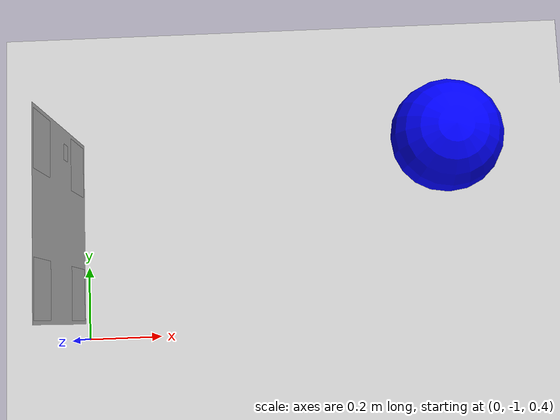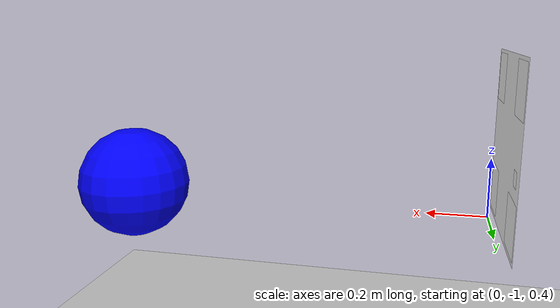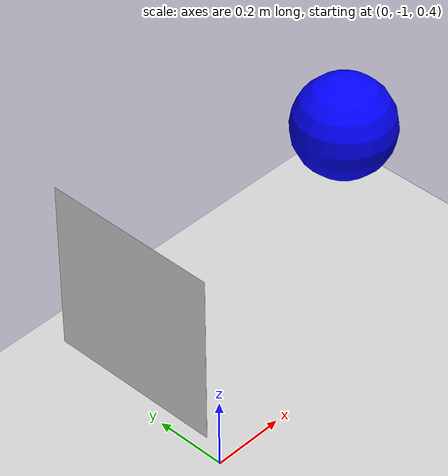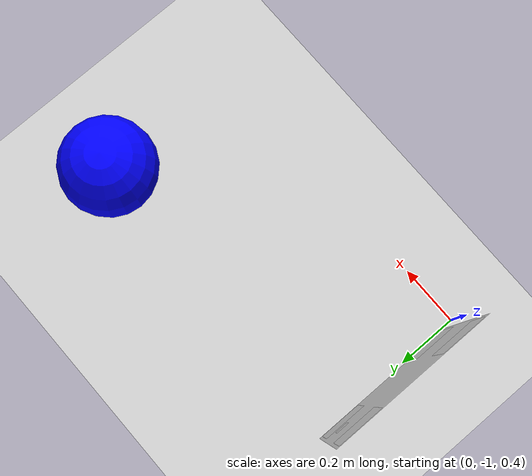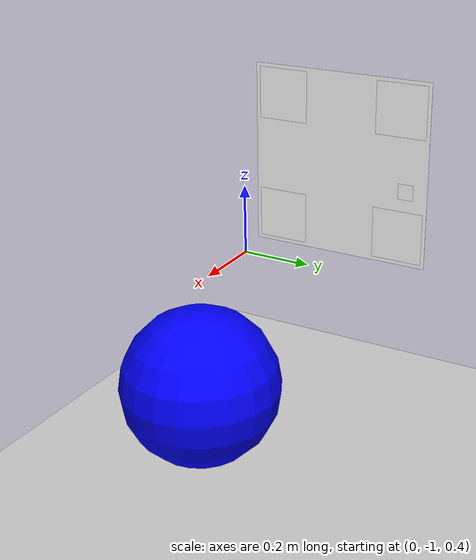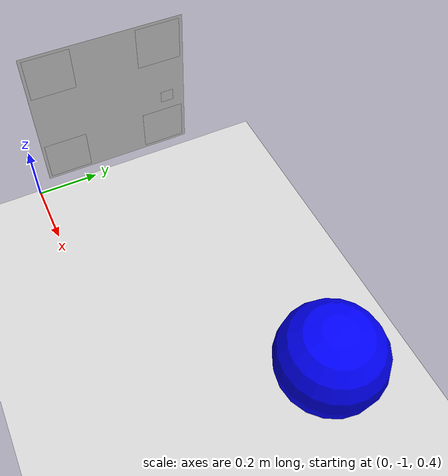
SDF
<?xml version="1.0" ?>
<sdf version="1.4">
  <!-- We use a custom world for the rrbot so that the camera angle is launched correctly -->

  <world name="default">
    <!-- Included light -->
    <include>
      <uri>https://fuel.gazebosim.org/1.0/OpenRobotics/models/Sun</uri>
    </include>

    <!-- Included model -->
    <include>
      <uri>https://fuel.gazebosim.org/1.0/OpenRobotics/models/Ground Plane</uri>
    </include>

    <include>
      <uri>
        model://arucotag
      </uri>
      <name>arucotag</name>
      <pose>0 -0.707 0.707 0 1.57 0</pose>
    </include>

    <include>
      <uri>
        model://spherical_object
      </uri>
      <name>spherical_object</name>
      <pose>1 -0.5 0.6 0 0 0</pose>
    </include>

    <gravity>0 0 0</gravity>

    <!-- Focus camera on tall pendulum -->
    <gui fullscreen='0'>
      <camera name='user_camera'>
        <pose>4.927360 -4.376610 3.740080 0.000000 0.275643 2.356190</pose>
        <view_controller>orbit</view_controller>
      </camera>
    </gui>

    <!-- World control -->

  </world>
</sdf>

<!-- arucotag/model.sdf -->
<sdf version='1.9'>
  <model name='arucotag'>
    <static>true</static>
    <pose>0 0 0.001 0 0 0</pose>
    <link name='base'>
      <visual name='background_visual'>
        <geometry>
          <plane>
            <normal>0 0 1</normal>
            <size>0.5 0.5</size>
          </plane>
        </geometry>
        <material>
          <diffuse>1 1 1 1</diffuse>
          <specular>0.2 0.2 0.2 1</specular>
        </material>
      </visual>
      <visual name='tag_0_visual'>
        <pose>0.17 0.17 0.0002 0 0 0</pose>
        <geometry>
          <plane>
            <normal>0 0 1</normal>
            <size>0.14 0.14</size>
          </plane>
        </geometry>
        <material>
          <diffuse>1 1 1 1</diffuse>
          <specular>0.4 0.4 0.4 1</specular>
          <pbr>
            <metal>
              <albedo_map>model://arucotag/aruco_0.png</albedo_map>
            </metal>
          </pbr>
        </material>
      </visual>
      <visual name='tag_1_visual'>
        <pose>-0.17 0.17 0.0002 0 0 0</pose>
        <geometry>
          <plane>
            <normal>0 0 1</normal>
            <size>0.14 0.14</size>
          </plane>
        </geometry>
        <material>
          <diffuse>1 1 1 1</diffuse>
          <specular>0.4 0.4 0.4 1</specular>
          <pbr>
            <metal>
              <albedo_map>model://arucotag/aruco_1.png</albedo_map>
            </metal>
          </pbr>
        </material>
      </visual>
      <visual name='tag_2_visual'>
        <pose>-0.17 -0.17 0.0002 0 0 0</pose>
        <geometry>
          <plane>
            <normal>0 0 1</normal>
            <size>0.14 0.14</size>
          </plane>
        </geometry>
        <material>
          <diffuse>1 1 1 1</diffuse>
          <specular>0.4 0.4 0.4 1</specular>
          <pbr>
            <metal>
              <albedo_map>model://arucotag/aruco_2.png</albedo_map>
            </metal>
          </pbr>
        </material>
      </visual>
      <visual name='tag_3_visual'>
        <pose>0.17 -0.17 0.0002 0 0 0</pose>
        <geometry>
          <plane>
            <normal>0 0 1</normal>
            <size>0.14 0.14</size>
          </plane>
        </geometry>
        <material>
          <diffuse>1 1 1 1</diffuse>
          <specular>0.4 0.4 0.4 1</specular>
          <pbr>
            <metal>
              <albedo_map>model://arucotag/aruco_3.png</albedo_map>
            </metal>
          </pbr>
        </material>
      </visual>
      <visual name='tag_4_visual'>
        <pose>0.0 0.11 0.0002 0 0 0</pose>
        <geometry>
          <plane>
            <normal>0 0 1</normal>
            <size>0.07 0.07</size>
          </plane>
        </geometry>
        <material>
          <diffuse>1 1 1 1</diffuse>
          <specular>0.4 0.4 0.4 1</specular>
          <pbr>
            <metal>
              <albedo_map>model://arucotag/aruco_4.png</albedo_map>
            </metal>
          </pbr>
        </material>
      </visual>
      <visual name='tag_5_visual'>
        <pose>-0.11 0.0 0.0002 0 0 0</pose>
        <geometry>
          <plane>
            <normal>0 0 1</normal>
            <size>0.07 0.07</size>
          </plane>
        </geometry>
        <material>
          <diffuse>1 1 1 1</diffuse>
          <specular>0.4 0.4 0.4 1</specular>
          <pbr>
            <metal>
              <albedo_map>model://arucotag/aruco_5.png</albedo_map>
            </metal>
          </pbr>
        </material>
      </visual>
      <visual name='tag_6_visual'>
        <pose>0.0 -0.11 0.0002 0 0 0</pose>
        <geometry>
          <plane>
            <normal>0 0 1</normal>
            <size>0.07 0.07</size>
          </plane>
        </geometry>
        <material>
          <diffuse>1 1 1 1</diffuse>
          <specular>0.4 0.4 0.4 1</specular>
          <pbr>
            <metal>
              <albedo_map>model://arucotag/aruco_6.png</albedo_map>
            </metal>
          </pbr>
        </material>
      </visual>
      <visual name='tag_7_visual'>
        <pose>0.11 0.0 0.0002 0 0 0</pose>
        <geometry>
          <plane>
            <normal>0 0 1</normal>
            <size>0.07 0.07</size>
          </plane>
        </geometry>
        <material>
          <diffuse>1 1 1 1</diffuse>
          <specular>0.4 0.4 0.4 1</specular>
          <pbr>
            <metal>
              <albedo_map>model://arucotag/aruco_7.png</albedo_map>
            </metal>
          </pbr>
        </material>
      </visual>
      <visual name='tag_8_visual'>
        <pose>0.0 0.045 0.0002 0 0 0</pose>
        <geometry>
          <plane>
            <normal>0 0 1</normal>
            <size>0.025 0.025</size>
          </plane>
        </geometry>
        <material>
          <diffuse>1 1 1 1</diffuse>
          <specular>0.4 0.4 0.4 1</specular>
          <pbr>
            <metal>
              <albedo_map>model://arucotag/aruco_8.png</albedo_map>
            </metal>
          </pbr>
        </material>
      </visual>
      <visual name='tag_9_visual'>
        <pose>-0.045 0.0 0.0002 0 0 0</pose>
        <geometry>
          <plane>
            <normal>0 0 1</normal>
            <size>0.025 0.025</size>
          </plane>
        </geometry>
        <material>
          <diffuse>1 1 1 1</diffuse>
          <specular>0.4 0.4 0.4 1</specular>
          <pbr>
            <metal>
              <albedo_map>model://arucotag/aruco_9.png</albedo_map>
            </metal>
          </pbr>
        </material>
      </visual>
      <visual name='tag_10_visual'>
        <pose>0.0 -0.045 0.0002 0 0 0</pose>
        <geometry>
          <plane>
            <normal>0 0 1</normal>
            <size>0.025 0.025</size>
          </plane>
        </geometry>
        <material>
          <diffuse>1 1 1 1</diffuse>
          <specular>0.4 0.4 0.4 1</specular>
          <pbr>
            <metal>
              <albedo_map>model://arucotag/aruco_10.png</albedo_map>
            </metal>
          </pbr>
        </material>
      </visual>
      <visual name='tag_11_visual'>
        <pose>0.045 0.0 0.0002 0 0 0</pose>
        <geometry>
          <plane>
            <normal>0 0 1</normal>
            <size>0.025 0.025</size>
          </plane>
        </geometry>
        <material>
          <diffuse>1 1 1 1</diffuse>
          <specular>0.4 0.4 0.4 1</specular>
          <pbr>
            <metal>
              <albedo_map>model://arucotag/aruco_11.png</albedo_map>
            </metal>
          </pbr>
        </material>
      </visual>
      <visual name='tag_12_visual'>
        <pose>0.0 0.0 0.0002 0 0 0</pose>
        <geometry>
          <plane>
            <normal>0 0 1</normal>
            <size>0.018 0.018</size>
          </plane>
        </geometry>
        <material>
          <diffuse>1 1 1 1</diffuse>
          <specular>0.4 0.4 0.4 1</specular>
          <pbr>
            <metal>
              <albedo_map>model://arucotag/aruco_12.png</albedo_map>
            </metal>
          </pbr>
        </material>
      </visual>
      <!-- Small, flat drawing of the positive board axes.  It sits in the
           marker-free gap between the two large +Y-side tags. -->
      <visual name='board_positive_axes_drawing'>
        <pose>0.045 0.190 0.0005 0 0 0</pose>
        <geometry>
          <plane>
            <normal>0 0 1</normal>
            <size>0.042 0.042</size>
          </plane>
        </geometry>
        <material>
          <diffuse>1 1 1 1</diffuse>
          <specular>0 0 0 1</specular>
          <pbr>
            <metal>
              <albedo_map>model://arucotag/board_axes_xy.png</albedo_map>
            </metal>
          </pbr>
        </material>
      </visual>
    </link>
  </model>
</sdf>

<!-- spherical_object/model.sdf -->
<sdf version="1.9">
  <model name="spherical_object">
    <static>true</static> <!-- L'oggetto sarà statico -->
    <pose>0 0 0 0 0 0</pose> <!-- Posizione iniziale -->

    <link name="sphere">
      <inertial>
        <mass>1.0</mass> <!-- Massa arbitraria -->
        <inertia>
          <ixx>0.001</ixx>
          <iyy>0.001</iyy>
          <izz>0.001</izz>
          <ixy>0.0</ixy>
          <ixz>0.0</ixz>
          <iyz>0.0</iyz>
        </inertia>
      </inertial>

      <visual name="sphere_visual">
        <geometry>
          <sphere>
            <radius>0.15</radius> <!-- Raggio della sfera: 15 cm -->
          </sphere>
        </geometry>
        <material>
          <diffuse>0 0 1 1</diffuse> <!-- Colore blu -->
          <specular>0.5 0.5 0.5 1</specular>
        </material>
      </visual>

      <collision name="sphere_collision">
        <geometry>
          <sphere>
            <radius>0.15</radius>
          </sphere>
        </geometry>
      </collision>
    </link>
  </model>
</sdf>
